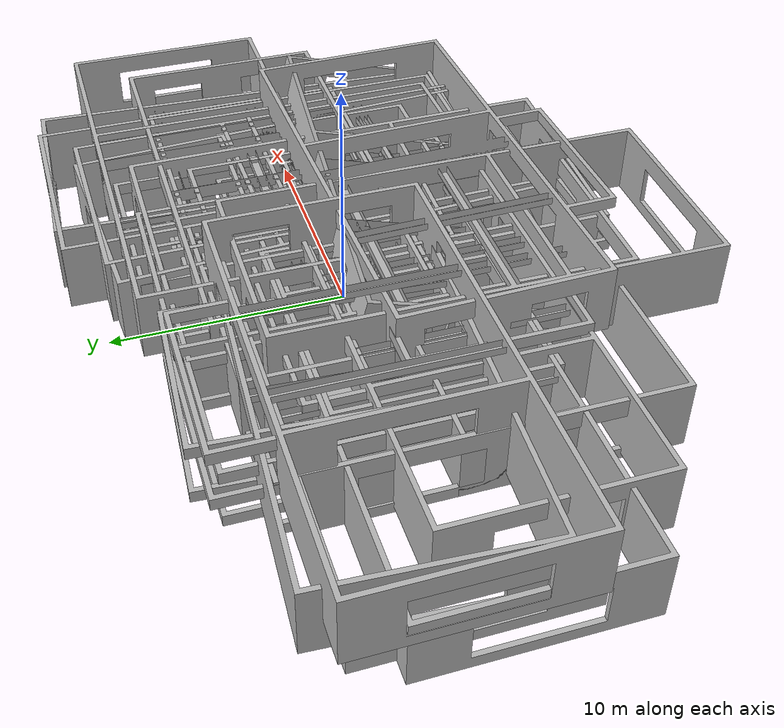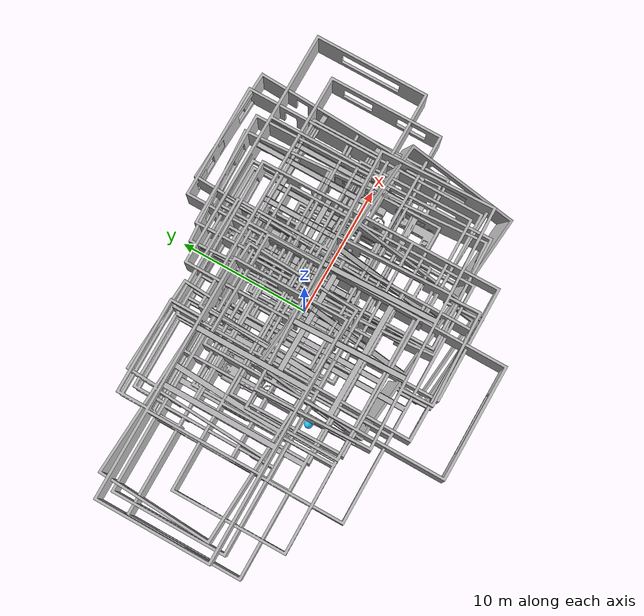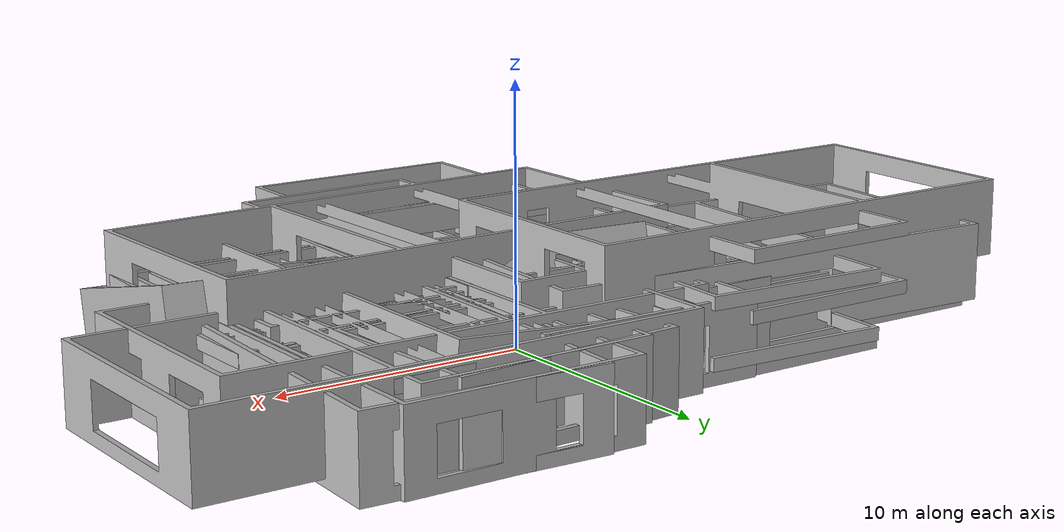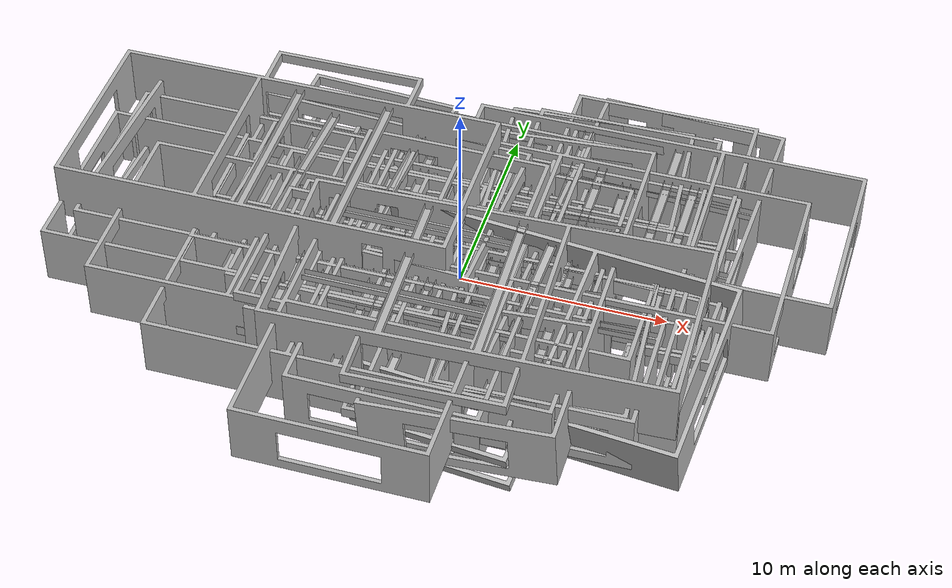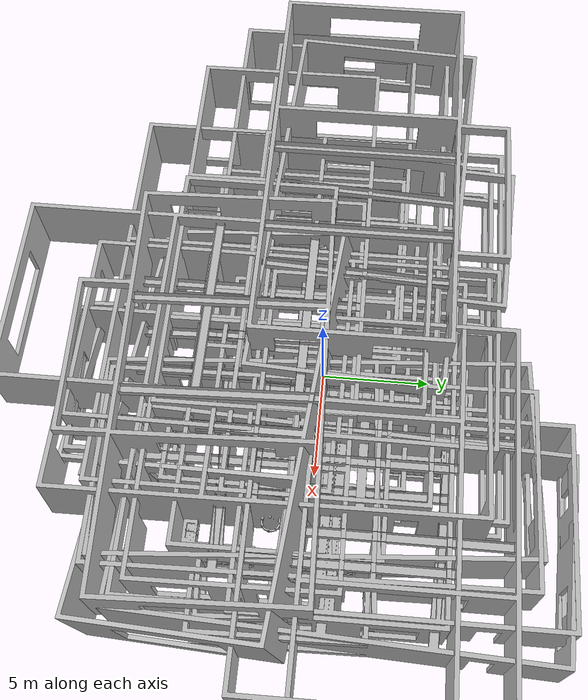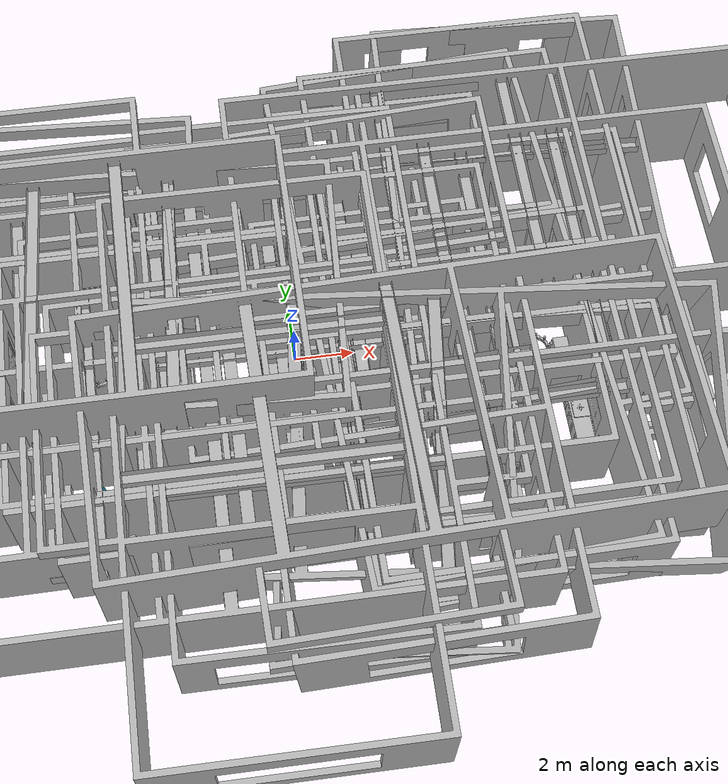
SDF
<sdf version="1.6">
 <world name="default">
  <gravity>0 0 -9.8</gravity>
  <magnetic_field>6e-06 2.3e-05 -4.2e-05</magnetic_field>
  <atmosphere type="adiabatic"/>
  <physics name="default_physics" default="0" type="ode">
   <max_step_size>0.001</max_step_size>
   <real_time_factor>1</real_time_factor>
   <real_time_update_rate>1000</real_time_update_rate>
  </physics>
  <scene>
   <ambient>0.4 0.4 0.4 1</ambient>
   <background>0.7 0.7 0.7 1</background>
   <shadows>false</shadows>
   <grid>false</grid>
   <origin_visual>false</origin_visual>
  </scene>
  <spherical_coordinates>
   <surface_model>EARTH_WGS84</surface_model>
   <latitude_deg>0</latitude_deg>
   <longitude_deg>0</longitude_deg>
   <elevation>0</elevation>
   <heading_deg>0</heading_deg>
  </spherical_coordinates>
  <model name="AirconditionerA_01_001">
   <static>true</static>
   <include><uri>model://aws_robomaker_residential_AirconditionerA_01</uri></include>
   <pose>-9.199410 2.411230 2.084544 1.5707 -0 0</pose>
  </model>
  <model name="AirconditionerB_01_001">
   <static>true</static>
   <include><uri>model://aws_robomaker_residential_AirconditionerB_01</uri></include>
   <pose>-2.004656 -5.226610 0.003485 1.5707 -0 0</pose>
  </model>
  <model name="Ball_01_001">
   <static>true</static>
   <include><uri>model://aws_robomaker_residential_Ball_01</uri></include>
   <pose>3.295503 4.225674 0.318684 1.5707 -0 0</pose>
  </model>
  <model name="Ball_01_003">
   <static>true</static>
   <include><uri>model://aws_robomaker_residential_Ball_01</uri></include>
   <pose>-6.945503 -4.22174 0.318684 1.5707 -0 0</pose>
  </model>
  <model name="Bed_01_001">
   <static>true</static>
   <include><uri>model://aws_robomaker_residential_Bed_01</uri></include>
   <pose>-6.165067 2.030560 -0.000010 1.57 -0 0</pose>
  </model>
  <model name="Board_01_001">
   <static>true</static>
   <include><uri>model://aws_robomaker_residential_Board_01</uri></include>
   <pose>2.779073 -5.392703 1.538173 1.5707 -0 0</pose>
  </model>
  <model name="ChairA_01_001">
   <static>true</static>
   <include><uri>model://aws_robomaker_residential_ChairA_01</uri></include>
   <pose>7.11516 0.209028 0.024685 1.5707 -0 -1.55607</pose>
  </model>
  <model name="ChairA_01_002">
   <static>true</static>
   <include><uri>model://aws_robomaker_residential_ChairA_01</uri></include>
   <pose>6.25506 0.219468 0.011308 1.5707 0 -1.50414</pose>
  </model>
  <model name="ChairA_01_003">
   <static>true</static>
   <include><uri>model://aws_robomaker_residential_ChairA_01</uri></include>
   <pose>6.06678 1.68075 0.01 1.5707 -0 1.56986</pose>
  </model>
  <model name="ChairA_01_004">
   <static>true</static>
   <include><uri>model://aws_robomaker_residential_ChairA_01</uri></include>
   <pose>7.00277 1.67074 0 1.5707 -0 1.52363</pose>
  </model>
  <model name="ChairA_01_005">
   <static>true</static>
   <include><uri>model://aws_robomaker_residential_ChairA_01</uri></include>
   <pose>-8.270940 1.916650 0.036650 1.5707 -0 0</pose>
  </model>
  <model name="Chandelier_01_001">
   <static>true</static>
   <include><uri>model://aws_robomaker_residential_Chandelier_01</uri></include>
   <pose>1.221061 4.155740 1.295000 1.5707 -0 0</pose>
  </model>
  <model name="Chandelier_01_002">
   <static>true</static>
   <include><uri>model://aws_robomaker_residential_Chandelier_01</uri></include>
   <pose>-6.451061 -0.692040 1.810000 1.5707 -0 0</pose>
  </model>
  <model name="Chandelier_01_003">
   <static>true</static>
   <include><uri>model://aws_robomaker_residential_Chandelier_01</uri></include>
   <pose>7.824061 -1.59 1.7510000 1.5707 -0 0</pose>
  </model>
  <model name="Chandelier_01_004">
   <static>true</static>
   <include><uri>model://aws_robomaker_residential_Chandelier_01</uri></include>
   <pose>1.221061 -1.592040 1.7873000 1.5707 -0 0</pose>
  </model>
  <model name="Carpet_01_001">
   <static>true</static>
   <include><uri>model://aws_robomaker_residential_Carpet_01</uri></include>
   <pose>0.785050 -1.106647 0.001106 1.5707 -0 0</pose>
  </model>
  <model name="Carpet_01_002">
   <static>true</static>
   <include><uri>model://aws_robomaker_residential_Carpet_01</uri></include>
   <pose>2.854050 3.45 0.000585 1.5707 -0 0</pose>
  </model>
  <model name="SecurityCamera_01_001">
   <static>true</static>
   <include><uri>model://aws_robomaker_residential_SecurityCamera_01</uri></include>
   <pose>0.842134 -4.996294 0.495067 1.5707 -0 -2.841039</pose>
  </model>
  <model name="CoffeeTable_01_001">
   <static>true</static>
   <include><uri>model://aws_robomaker_residential_CoffeeTable_01</uri></include>
   <pose>1.512301 -1.733438 0.041983 1.5707 0.000000 0.01000</pose>
  </model>
  <model name="CookingBench_01_001">
   <include><uri>model://aws_robomaker_residential_CookingBench_01</uri></include>
   <pose>9.038383 -3.351140 0.903610 1.5707 -0 3.137133</pose>
   <static>true</static>
  </model>
  <model name="Curtain_01_001">
   <static>true</static>
   <include><uri>model://aws_robomaker_residential_Curtain_01</uri></include>
   <pose>-9.172642 0.203760 0 1.5707 -0 0</pose>
  </model>
  <model name="BalconyTable_01_001">
   <static>true</static>
   <include><uri>model://aws_robomaker_residential_BalconyTable_01</uri></include>
   <pose>-0.556240 4.111241 0 1.5707 -0 0</pose>
  </model>
  <model name="Door_01_001">
   <static>true</static>
   <include><uri>model://aws_robomaker_residential_Door_01</uri></include>
   <pose>6.001449 -5.549002 0 1.5707 -0 0</pose>
  </model>
  <model name="Dumbbell_01_001">
   <static>true</static>
   <include><uri>model://aws_robomaker_residential_Dumbbell_01</uri></include>
   <pose>2.512849 2.717787 0.002183 1.5707 -0 0</pose>
  </model>
  <model name="FitnessEquipment_01_001">
   <static>true</static>
   <include><uri>model://aws_robomaker_residential_FitnessEquipment_01</uri></include>
   <pose>3.484720 3.169104 0.003168 1.5707 -0 0</pose>
  </model>
  <model name="FoldingDoor_01_001">
   <static>true</static>
   <include><uri>model://aws_robomaker_residential_FoldingDoor_01</uri></include>
   <pose>-2.461096 1.844219 0.041881 1.5707 -0 0</pose>
  </model>
  <model name="FoldingDoor_01_002">
   <static>true</static>
   <include><uri>model://aws_robomaker_residential_FoldingDoor_01</uri></include>
   <pose>-2.461096 -4.053320 0.041881 1.5707 -0 0</pose>
  </model>
  <model name="HouseWallB_01_001">
   <static>true</static>
   <include><uri>model://aws_robomaker_residential_HouseWallB_01</uri></include>
   <pose>0 0 0 1.5707 -0 0</pose>
  </model>
  <model name="FloorB_01_001">
   <static>true</static>
   <include><uri>model://aws_robomaker_residential_FloorB_01</uri></include>
   <pose>0 0 0 1.5707 -0 0</pose>
  </model>
  <model name="KitchenCabinet_01_001">
   <static>true</static>
   <include><uri>model://aws_robomaker_residential_KitchenCabinet_01</uri></include>
   <pose>8.002009 -3.836509 0.012068 1.57 0 -3.140001</pose>
  </model>
  <model name="KitchenUtensils_01_001">
   <static>true</static>
   <include><uri>model://aws_robomaker_residential_KitchenUtensils_01</uri></include>
   <pose>9.285478 -5.021261 1.141805 1.5707 -0 0</pose>
  </model>
  <model name="LightC_01_001">
   <static>true</static>
   <include><uri>model://aws_robomaker_residential_LightC_01</uri></include>
   <pose>1.769567 -5.4443710 2.000000 1.5707 -0 0</pose>
  </model>
  <model name="LightC_01_002">
   <static>true</static>
   <include><uri>model://aws_robomaker_residential_LightC_01</uri></include>
   <pose>-0.138245 -5.4443710 2.000000 1.5707 -0 0</pose>
  </model>
  <model name="PortraitA_01">
   <static>true</static>
   <include><uri>model://aws_robomaker_residential_PortraitA_01</uri></include>
   <pose>-2.712360 -4.817539 1.00000 1.5707 -0 1.566796</pose>
  </model>
  <model name="PortraitB_02">
   <static>true</static>
   <include><uri>model://aws_robomaker_residential_PortraitB_02</uri></include>
   <pose>5.737017 3.080310 0.300000 1.5707 -0 0</pose>
  </model>
  <model name="PortraitB_03">
   <static>true</static>
   <include><uri>model://aws_robomaker_residential_PortraitB_03</uri></include>
   <pose>3.071380 -5.349366 0.005494 -0.168428 0.0 3.104232</pose>
  </model>
  <model name="PortraitA_02">
   <static>true</static>
   <include><uri>model://aws_robomaker_residential_PortraitA_02</uri></include>
   <pose>7.937017 3.080310 0.300000 1.5707 -0 3.14</pose>
  </model>
  <model name="PortraitE_01">
   <static>true</static>
   <include><uri>model://aws_robomaker_residential_PortraitE_01</uri></include>
   <pose>-5.773094 -5.492466 1.000000 1.5707 -0 3.132627</pose>
  </model>
  <model name="PortraitE_02">
   <static>true</static>
   <include><uri>model://aws_robomaker_residential_PortraitE_02</uri></include>
   <pose>-6.193025 -1.590208 0.3 1.5707 -0 0.004290</pose>
  </model>
  <model name="DeskPortraitA_01">
   <static>true</static>
   <include><uri>model://aws_robomaker_residential_DeskPortraitA_01</uri></include>
   <pose>-0.036864 -5.110156 0.498660 1.5707 -0 2.927784</pose>
  </model>
  <model name="DeskPortraitA_02">
   <static>true</static>
   <include><uri>model://aws_robomaker_residential_DeskPortraitA_02</uri></include>
   <pose>2.046082 -1.892926 0.0703880 1.507 -0.000441 1.576216</pose>
  </model>
  <model name="DeskPortraitC_01">
   <static>true</static>
   <include><uri>model://aws_robomaker_residential_DeskPortraitC_01</uri></include>
   <pose>-7.746377 2.731075 0.694620 1.5707 -0.000359 -0.055499</pose>
  </model>
  <model name="DeskPortraitC_02">
   <static>true</static>
   <include><uri>model://aws_robomaker_residential_DeskPortraitC_02</uri></include>
   <pose>0.964613 -1.586951 0.127676 1.5707 -0.000545 -1.578699</pose>
  </model>
  <model name="DeskPortraitD_01">
   <static>true</static>
   <include><uri>model://aws_robomaker_residential_DeskPortraitD_01</uri></include>
   <pose>2.645560 -5.376225 1.573738 1.5707 -0 -3.112826</pose>
  </model>
  <model name="DeskPortraitB_01">
   <static>true</static>
   <include><uri>model://aws_robomaker_residential_DeskPortraitB_01</uri></include>
   <pose>3.547376 -5.083898 -0.012660 1.336622 -0.000001 3.046741</pose>
  </model>
  <model name="Refrigerator_01_001">
   <static>true</static>
   <include><uri>model://aws_robomaker_residential_Refrigerator_01</uri></include>
   <pose>8.702731 -1.032031 0 0 -0 -1.563499</pose>
  </model>
  <model name="RoomWindow_01_001">
   <static>true</static>
   <include><uri>model://aws_robomaker_residential_RoomWindow_01</uri></include>
   <pose>-9.418600 -0.026285 0.502739 1.5707 -0 0</pose>
  </model>
  <model name="RoomWindow_01_002">
   <static>true</static>
   <include><uri>model://aws_robomaker_residential_RoomWindow_01</uri></include>
   <pose>-9.418600 -2.374090 0.502739 1.5707 -0 0</pose>
  </model>
  <model name="RoomWindow_01_003">
   <static>true</static>
   <include><uri>model://aws_robomaker_residential_RoomWindow_01</uri></include>
   <pose>9.422616 -3.373981 0.502739 1.5707 -0 -3.136099</pose>
  </model>
  <model name="RoomWindow_01_004">
   <static>true</static>
   <include><uri>model://aws_robomaker_residential_RoomWindow_01</uri></include>
   <pose>9.422558 0.968520 0.496581 1.5707 -0 -3.136099</pose>
  </model>
  <model name="RoomWindow_01_005">
   <static>true</static>
   <include><uri>model://aws_robomaker_residential_RoomWindow_01</uri></include>
   <pose>4.722317 4.470281 0.502739 1.5707 -0 -3.136099</pose>
  </model>
  <model name="RoomWindow_01_006">
   <static>true</static>
   <include><uri>model://aws_robomaker_residential_RoomWindow_01</uri></include>
   <pose>3.488520 5.600688 0.502739 1.5707 -0 -1.566274</pose>
  </model>
  <model name="RoomWindow_01_007">
   <static>true</static>
   <include><uri>model://aws_robomaker_residential_RoomWindow_01</uri></include>
   <pose>1.140949 5.600688 0.502739 1.5707 -0 -1.566274</pose>
  </model>
  <model name="RoomWindow_01_008">
   <static>true</static>
   <include><uri>model://aws_robomaker_residential_RoomWindow_01</uri></include>
   <pose>-1.199340 5.600688 0.502739 1.5707 -0 -1.566274</pose>
  </model>
  <model name="RoomWindow_01_009">
   <static>true</static>
   <include><uri>model://aws_robomaker_residential_RoomWindow_01</uri></include>
   <pose>-2.396624 4.387607 0.502739 1.5707 -0 0</pose>
  </model>
  <light name="LivingRoom_CeilingLight_0" type="point">
   <pose>1.194296 4.155759 2.2 0 -0 0</pose>
   <diffuse>0.5 0.5 0.5 1</diffuse>
   <specular>0.1 0.1 0.1 1</specular>
   <attenuation>
    <range>20</range>
    <constant>0.32</constant>
    <linear>0.01</linear>
    <quadratic>0.03</quadratic>
   </attenuation>
   <cast_shadows>0</cast_shadows>
   <direction>0 0 -1</direction>
  </light>
  <light name="LivingRoom_CeilingLight_1" type="point">
   <pose>1.194296 -1.589959 2.2 0 -0 0</pose>
   <diffuse>0.5 0.5 0.5 1</diffuse>
   <specular>0.1 0.1 0.1 1</specular>
   <attenuation>
    <range>20</range>
    <constant>0.05</constant>
    <linear>0.01</linear>
    <quadratic>0.09</quadratic>
   </attenuation>
   <cast_shadows>0</cast_shadows>
   <direction>0 0 -1</direction>
  </light>
  <light name="LivingRoom_WallLight_0" type="point">
   <pose>1.76956 -5.444370 2.2 0 -0 0</pose>
   <diffuse>0.24 0.24 0.24 1</diffuse>
   <specular>0.1 0.1 0.1 1</specular>
   <attenuation>
    <range>20</range>
    <constant>0.12</constant>
    <linear>0.00</linear>
    <quadratic>0.03</quadratic>
   </attenuation>
   <direction>0 0 -1</direction>
  </light>
  <light name="LivingRoom_WallLight_1" type="point">
   <pose>-0.13826 -5.444370 2.2 0 -0 0</pose>
   <diffuse>0.24 0.24 0.24 1</diffuse>
   <specular>0.1 0.1 0.1 1</specular>
   <attenuation>
    <range>20</range>
    <constant>0.12</constant>
    <linear>0.00</linear>
    <quadratic>0.03</quadratic>
   </attenuation>
   <direction>0 0 -1</direction>
  </light>
  <light name="TV_Light_0" type="point">
   <pose>0.8269 -4.939577 1.1 0 -0 0</pose>
   <diffuse>0.31372 0.31372 0.34901 1</diffuse>
   <specular>0.1 0.1 0.1 1</specular>
   <attenuation>
    <range>3</range>
    <constant>0.10</constant>
    <linear>0.04</linear>
    <quadratic>0.50</quadratic>
   </attenuation>
   <direction>0 0 -1</direction>
  </light>
  <light name="BedRoom_Portrait_Light_0" type="spot">
   <pose>-6.190379 -1.829697 1.5587 0.3 -0 0.0</pose>
   <diffuse>0.5 0.5 0.5 1</diffuse>
   <specular>0.1 0.1 0.1 1</specular>
   <attenuation>
    <range>20</range>
    <constant>0.50</constant>
    <linear>0.01</linear>
    <quadratic>0.00</quadratic>
   </attenuation>
   <spot><inner_angle>0.6</inner_angle><outer_angle>1.0</outer_angle><falloff>1.0</falloff></spot>
   <direction>0 0 -1</direction>
  </light>
  <light name="BedRoom_CeilingLight_0" type="point">
   <pose>-6.451061 -0.692040 2.000000 0 -0 0</pose>
   <diffuse>0.5 0.5 0.5 1</diffuse>
   <specular>0.1 0.1 0.1 1</specular>
   <attenuation>
    <range>20</range>
    <constant>0.32</constant>
    <linear>0.01</linear>
    <quadratic>0.03</quadratic>
   </attenuation>
   <cast_shadows>0</cast_shadows>
   <direction>0 0 -1</direction>
  </light>
  <light name="Kitchen_CeilingLight_0" type="point">
   <pose>7.8582 -1.5905 2.280000 0 -0 0</pose>
   <diffuse>0.5 0.5 0.5 1</diffuse>
   <specular>0.1 0.1 0.1 1</specular>
   <attenuation>
    <range>20</range>
    <constant>0.3</constant>
    <linear>0.01</linear>
    <quadratic>0.01</quadratic>
   </attenuation>
   <cast_shadows>0</cast_shadows>
   <direction>0 0 -1</direction>
  </light>
 </world>
</sdf>

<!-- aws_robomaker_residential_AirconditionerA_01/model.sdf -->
<sdf version="1.6">
  <model name="aws_robomaker_residential_AirconditionerA_01">
    <link name="link">
      <inertial>
        <mass>1</mass>
	<inertia>
          <ixx>1</ixx>
          <ixy>0</ixy>
          <ixz>0</ixz>
          <iyy>1</iyy>
          <iyz>0</iyz>
          <izz>1</izz>
        </inertia>
      </inertial>
      <collision name="collision">
        <geometry>
          <mesh>
            <uri>meshes/object.obj</uri>
            <scale>1 1 1</scale>
          </mesh>
        </geometry>
      </collision>
      <visual name="visual">
	    <geometry>
          <mesh>
            <uri>meshes/object.obj</uri>
          </mesh>
        </geometry>
      <meta> <layer> 1 </layer></meta>
</visual>
    </link>
	<static>1</static>
  </model>
</sdf>

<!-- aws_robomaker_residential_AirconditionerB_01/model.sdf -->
<sdf version="1.6">
  <model name="aws_robomaker_residential_AirconditionerB_01">
    <link name="link">
      <inertial>
	<inertia>
          <ixx>1</ixx>
          <ixy>0</ixy>
          <ixz>0</ixz>
          <iyy>1</iyy>
          <iyz>0</iyz>
          <izz>1</izz>
        </inertia>
        <mass>1</mass>
      </inertial>
      <collision name="collision">
        <geometry>
          <mesh>
<uri>model://aws_robomaker_residential_AirconditionerB_01/meshes/object.obj</uri>
            <scale>1 1 1</scale>
          </mesh>
        </geometry>
      </collision>
      <visual name="visual">
	    <geometry>
          <mesh>
<uri>model://aws_robomaker_residential_AirconditionerB_01/meshes/object.obj</uri>
          </mesh>
        </geometry>
      <meta> <layer> 1 </layer></meta>
</visual>
    </link>
  </model>
</sdf>

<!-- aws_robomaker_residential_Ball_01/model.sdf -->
<sdf version="1.6">
  <model name="aws_robomaker_residential_Ball_01">
    <link name="link">
      <inertial>
        <mass>0.12</mass>
        <!-- 2r = 62cm -->
          <inertia>
            <ixx>0.030752</ixx>
            <ixy>0</ixy>
            <ixz>0</ixz>
            <iyy>0.030752</iyy>
            <iyz>0</iyz>
            <izz>0.030752</izz>
          </inertia>
      </inertial>
      <collision name="collision">

        <geometry>
          <sphere>
            <radius>0.31 </radius>
          </sphere>

        </geometry>

        <surface>
          <friction>
            <ode>
              <mu>0.85</mu>
              <mu2>0.85</mu2>
            </ode>
          </friction>

        <!-- Add some bounciness to the ball -->
          <contact>
            <ode>
              <kd>8500</kd>
              <max_vel>5.1</max_vel>
            </ode>
          </contact>
        </surface>

      </collision>
      <visual name="visual">
	    <geometry>
          <sphere>
            <radius>0.31 </radius>
          </sphere>
      </geometry>
          <material>
            <diffuse>0.12 0.76 0.97 1</diffuse>
            <ambient>0.03 0.21 0.27 1</ambient>
          </material>
      <meta> <layer> 1 </layer></meta>
</visual>
    </link>
  </model>
</sdf>

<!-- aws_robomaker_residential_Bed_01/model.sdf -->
<sdf version="1.6">
  <model name="aws_robomaker_residential_Bed_01">
    <link name="link">
      <inertial>
	<inertia>
          <ixx>1</ixx>
          <ixy>0</ixy>
          <ixz>0</ixz>
          <iyy>1</iyy>
          <iyz>0</iyz>
          <izz>1</izz>
        </inertia>
        <mass>22.6</mass>
      </inertial>
      <collision name="collision">
        <geometry>
          <mesh>
<uri>model://aws_robomaker_residential_Bed_01/meshes/object.obj</uri>
            <scale>1 1 1</scale>
          </mesh>
        </geometry>
      </collision>
      <visual name="visual">
	    <geometry>
          <mesh>
<uri>model://aws_robomaker_residential_Bed_01/meshes/object.obj</uri>
          </mesh>
        </geometry>
      <meta> <layer> 1 </layer></meta>
</visual>
    </link>
  <static>1</static>
  </model>
</sdf>

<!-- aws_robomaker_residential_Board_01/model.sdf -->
<sdf version="1.6">
  <model name="aws_robomaker_residential_Board_01">
    <link name="link">
      <inertial>
	<inertia>
          <ixx>1</ixx>
          <ixy>0</ixy>
          <ixz>0</ixz>
          <iyy>1</iyy>
          <iyz>0</iyz>
          <izz>1</izz>
        </inertia>
        <mass>1</mass>
      </inertial>
      <collision name="collision">
        <geometry>
          <mesh>
<uri>model://aws_robomaker_residential_Board_01/meshes/object.obj</uri>
            <scale>1 1 1</scale>
          </mesh>
        </geometry>
      </collision>
      <visual name="visual">
	    <geometry>
          <mesh>
<uri>model://aws_robomaker_residential_Board_01/meshes/object.obj</uri>
          </mesh>
        </geometry>
      <meta> <layer> 2 </layer></meta>
</visual>
    </link>

    <static>1</static>
  </model>
</sdf>

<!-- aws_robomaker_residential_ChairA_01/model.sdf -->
<sdf version="1.6">
  <model name="aws_robomaker_residential_ChairA_01">
    <link name="link">
      <inertial>
          <mass>7.5</mass>
          <inertia>
            <ixy>0</ixy>
            <ixz>0</ixz>
            <iyz>0</iyz>
            <ixx>0.217</ixx>
            <iyy>0.217</iyy>
            <izz>0.067</izz>
          </inertia>
      </inertial>

      <collision name="collision">
        <geometry>
          <mesh>
<uri>model://aws_robomaker_residential_ChairA_01/meshes/object.obj</uri>
            <scale>1 1 1</scale>
          </mesh>
        </geometry>
      </collision>
      <visual name="visual">
	    <geometry>
          <mesh>
<uri>model://aws_robomaker_residential_ChairA_01/meshes/object.obj</uri>
          </mesh>
        </geometry>
      <meta> <layer> 1 </layer></meta>
</visual>
    </link>
  </model>
</sdf>

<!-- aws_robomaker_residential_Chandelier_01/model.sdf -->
<sdf version="1.6">
  <model name="aws_robomaker_residential_Chandelier_01">
    <link name="link">
      <inertial>
	<inertia>
          <ixx>1</ixx>
          <ixy>0</ixy>
          <ixz>0</ixz>
          <iyy>1</iyy>
          <iyz>0</iyz>
          <izz>1</izz>
        </inertia>
        <mass>1</mass>
      </inertial>
      <collision name="collision">
        <geometry>
          <mesh>
<uri>model://aws_robomaker_residential_Chandelier_01/meshes/object.obj</uri>
            <scale>1 1 1</scale>
          </mesh>
        </geometry>
      </collision>
      <visual name="visual">
	    <geometry>
          <mesh>
<uri>model://aws_robomaker_residential_Chandelier_01/meshes/object.obj</uri>
          </mesh>
        </geometry>
      <meta> <layer> 2 </layer></meta>
</visual>
    </link>
	<static>1</static>
  </model>
</sdf>

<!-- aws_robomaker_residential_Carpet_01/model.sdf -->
<sdf version="1.6">
  <model name="aws_robomaker_residential_Carpet_01">
    <link name="link">
      <inertial>
	<inertia>
          <ixx>1</ixx>
          <ixy>0</ixy>
          <ixz>0</ixz>
          <iyy>1</iyy>
          <iyz>0</iyz>
          <izz>1</izz>
        </inertia>
        <mass>8.1</mass>
      </inertial>

      <collision name="collision">

        <geometry>
          <mesh>
<uri>model://aws_robomaker_residential_Carpet_01/meshes/object.obj</uri>
            <scale>1 1 0.95</scale>
          </mesh>
        </geometry>

        <surface>
          <contact>
            <ode>
            </ode>
          </contact>
        </surface>

        <pose>0 0 -0.01 0 0 0 </pose>
      </collision>

      <visual name="visual">
	    <geometry>
          <mesh>
<uri>model://aws_robomaker_residential_Carpet_01/meshes/object.obj</uri>
          </mesh>
        </geometry>
      <meta> <layer> 1 </layer></meta>
</visual>
    </link>

    <static>1</static>

  </model>
</sdf>

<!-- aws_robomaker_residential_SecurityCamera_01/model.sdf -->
<sdf version="1.6">
  <model name="aws_robomaker_residential_SecurityCamera_01">
    <link name="link">
      <inertial>
        <mass>1</mass>
        <inertia>
          <ixx>18.2222</ixx>
          <ixy>0</ixy>
          <ixz>0</ixz>
          <iyy>18.2222</iyy>
          <iyz>0</iyz>
          <izz>0.0018767</izz>
        </inertia>
      </inertial>
      <collision name="collision">
        <geometry>
          <mesh>
<uri>model://aws_robomaker_residential_SecurityCamera_01/meshes/object.obj</uri>
            <scale>1 1 1</scale>
          </mesh>
        </geometry>
      </collision>
      <visual name="visual">
	    <geometry>
          <mesh>
<uri>model://aws_robomaker_residential_SecurityCamera_01/meshes/object.obj</uri>
          </mesh>
        </geometry>
        <meta>
          <layer>2</layer>
        </meta>
      </visual>
    </link>
  </model>
</sdf>

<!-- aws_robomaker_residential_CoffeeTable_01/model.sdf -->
<sdf version="1.6">
  <model name="aws_robomaker_residential_CoffeeTable_01">
    <link name="link">
      <inertial>
        <mass>21.7</mass>

        <inertia>
          <ixx>0.8137499999999998</ixx>
          <ixy>0</ixy>
          <ixz>0</ixz>
          <iyy>2.76675</iyy>
          <iyz>0</iyz>
          <izz>3.254</izz>
        </inertia>

      </inertial>

      <collision name="collision">
        <geometry>
          <mesh>
<uri>model://aws_robomaker_residential_CoffeeTable_01/meshes/object.obj</uri>
            <scale>1 1 1</scale>
          </mesh>
        </geometry>

        <surface>
          <contact>
            <ode>
              <max_vel>0.01</max_vel>
            </ode>
          </contact>
         </surface>
      </collision>

      <visual name="visual">
	    <geometry>
          <mesh>
<uri>model://aws_robomaker_residential_CoffeeTable_01/meshes/object.obj</uri>
          </mesh>
        </geometry>
      <meta> <layer> 1 </layer></meta>
</visual>
    </link>
    <static>1</static>
  </model>
</sdf>

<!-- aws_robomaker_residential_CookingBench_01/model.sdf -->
<sdf version="1.6">
  <model name="aws_robomaker_residential_CookingBench_01">
    <link name="link">
      <inertial>
	<inertia>
          <ixx>1</ixx>
          <ixy>0</ixy>
          <ixz>0</ixz>
          <iyy>1</iyy>
          <iyz>0</iyz>
          <izz>1</izz>
        </inertia>
        <mass>1</mass>
      </inertial>
      <collision name="collision">
        <geometry>
          <mesh>
<uri>model://aws_robomaker_residential_CookingBench_01/meshes/object.obj</uri>
            <scale>1 1 1</scale>
          </mesh>
        </geometry>
      </collision>
      <visual name="visual">
	    <geometry>
          <mesh>
<uri>model://aws_robomaker_residential_CookingBench_01/meshes/object.obj</uri>
          </mesh>
        </geometry>
      <meta> <layer> 1 </layer></meta>
</visual>
    </link>
  </model>
</sdf>

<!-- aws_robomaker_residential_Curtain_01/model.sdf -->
<sdf version="1.6">
  <model name="aws_robomaker_residential_Curtain_01">
    <link name="link">
      <inertial>
	<inertia>
          <ixx>1</ixx>
          <ixy>0</ixy>
          <ixz>0</ixz>
          <iyy>1</iyy>
          <iyz>0</iyz>
          <izz>1</izz>
        </inertia>
        <mass>1</mass>
      </inertial>
      <collision name="collision">
        <geometry>
          <mesh>
<uri>model://aws_robomaker_residential_Curtain_01/meshes/object.obj</uri>
            <scale>1 1 1</scale>
          </mesh>
        </geometry>
      </collision>
      <visual name="visual">
	    <geometry>
          <mesh>
<uri>model://aws_robomaker_residential_Curtain_01/meshes/object.obj</uri>
          </mesh>
        </geometry>
      <meta> <layer> 2 </layer></meta>
</visual>
    </link>
	<static>1</static>
  </model>
</sdf>

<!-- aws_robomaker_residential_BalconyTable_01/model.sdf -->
<sdf version="1.6">
  <model name="aws_robomaker_residential_BalconyTable_01">
    <link name="link">
      <inertial>
	<inertia>
          <ixx>1</ixx>
          <ixy>0</ixy>
          <ixz>0</ixz>
          <iyy>1</iyy>
          <iyz>0</iyz>
          <izz>1</izz>
        </inertia>
        <mass>15</mass>
      </inertial>
      <collision name="collision">
        <geometry>
          <mesh>
<uri>model://aws_robomaker_residential_BalconyTable_01/meshes/object.obj</uri>
            <scale>1 1 1</scale>
          </mesh>
        </geometry>
      </collision>
      <visual name="visual">
	    <geometry>
          <mesh>
<uri>model://aws_robomaker_residential_BalconyTable_01/meshes/object.obj</uri>
          </mesh>
        </geometry>
      <meta> <layer> 1 </layer></meta>
</visual>
    </link>
  </model>
</sdf>

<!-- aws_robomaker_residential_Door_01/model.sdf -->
<sdf version="1.6">
  <model name="aws_robomaker_residential_Door_01">
    <link name="link">
      <inertial>
	<inertia>
          <ixx>1</ixx>
          <ixy>0</ixy>
          <ixz>0</ixz>
          <iyy>1</iyy>
          <iyz>0</iyz>
          <izz>1</izz>
        </inertia>
        <mass>1</mass>
      </inertial>
      <collision name="collision">
        <geometry>
          <mesh>
<uri>model://aws_robomaker_residential_Door_01/meshes/object.obj</uri>
            <scale>1 1 1</scale>
          </mesh>
        </geometry>
      </collision>
      <visual name="visual">
	    <geometry>
          <mesh>
<uri>model://aws_robomaker_residential_Door_01/meshes/object.obj</uri>
          </mesh>
        </geometry>
      <meta> <layer> 2 </layer></meta>
</visual>
    </link>
	<static>1</static>
  </model>
</sdf>

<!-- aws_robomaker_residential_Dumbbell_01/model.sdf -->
<sdf version="1.6">
  <model name="aws_robomaker_residential_Dumbbell_01">
    <link name="link">
      <inertial>
        <mass>80</mass>

        <!-- slender rod -->
        <inertia>
          <ixx>14.601</ixx>
          <ixy>0</ixy>
          <ixz>0</ixz>
          <iyy>0</iyy>
          <iyz>0</iyz>
          <izz>14.601</izz>
        </inertia>
      </inertial>
      <collision name="collision">
        <geometry>
          <mesh>
<uri>model://aws_robomaker_residential_Dumbbell_01/meshes/object.obj</uri>
            <scale>1 1 1</scale>
          </mesh>
        </geometry>
        <max_contacts>10</max_contacts>
          <surface>
            <contact>
              <ode/>
            </contact>
            <bounce/>
            <friction>
              <torsional>
                <ode/>
              </torsional>
              <ode/>
            </friction>
          </surface>
      </collision>
      <visual name="visual">
	    <geometry>
          <mesh>
<uri>model://aws_robomaker_residential_Dumbbell_01/meshes/object.obj</uri>
          </mesh>
        </geometry>
      <meta> <layer> 1 </layer></meta>
</visual>
    </link>
    <static>1</static>
  </model>
</sdf>

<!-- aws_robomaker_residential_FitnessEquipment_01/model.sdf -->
<sdf version="1.6">
  <model name="aws_robomaker_residential_FitnessEquipment_01">
    <link name="link">
      <inertial>
	<inertia>
          <ixx>1</ixx>
          <ixy>0</ixy>
          <ixz>0</ixz>
          <iyy>1</iyy>
          <iyz>0</iyz>
          <izz>1</izz>
        </inertia>
        <mass>80</mass>
      </inertial>
      <collision name="collision">
        <geometry>
          <mesh>
<uri>model://aws_robomaker_residential_FitnessEquipment_01/meshes/object.obj</uri>
            <scale>1 1 1</scale>
          </mesh>
        </geometry>
      </collision>
      <visual name="visual">
	    <geometry>
          <mesh>
<uri>model://aws_robomaker_residential_FitnessEquipment_01/meshes/object.obj</uri>
          </mesh>
        </geometry>
      <meta> <layer> 1 </layer></meta>
</visual>
    </link>
  <static>1</static>
  </model>
</sdf>

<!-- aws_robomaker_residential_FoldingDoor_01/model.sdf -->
<sdf version="1.6">
  <model name="aws_robomaker_residential_FoldingDoor_01">
    <link name="link">
      <inertial>
	<inertia>
          <ixx>1</ixx>
          <ixy>0</ixy>
          <ixz>0</ixz>
          <iyy>1</iyy>
          <iyz>0</iyz>
          <izz>1</izz>
        </inertia>
        <mass>1</mass>
      </inertial>
      <collision name="collision">
        <geometry>
          <mesh>
<uri>model://aws_robomaker_residential_FoldingDoor_01/meshes/object.obj</uri>
            <scale>1 1 1</scale>
          </mesh>
        </geometry>
      </collision>
      <visual name="visual">
	    <geometry>
          <mesh>
<uri>model://aws_robomaker_residential_FoldingDoor_01/meshes/object.obj</uri>
          </mesh>
        </geometry>
      <meta> <layer> 2 </layer></meta>
</visual>
    </link>
	<static>1</static>
  </model>
</sdf>

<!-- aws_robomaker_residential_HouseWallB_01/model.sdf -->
<sdf version="1.6">
  <model name="aws_robomaker_residential_HouseWallB_01">
    <link name="link">
      <inertial>
	<inertia>
          <ixx>1</ixx>
          <ixy>0</ixy>
          <ixz>0</ixz>
          <iyy>1</iyy>
          <iyz>0</iyz>
          <izz>1</izz>
        </inertia>
        <mass>1</mass>
      </inertial>
      <collision name="collision">
        <geometry>
          <mesh>
<uri>model://aws_robomaker_residential_HouseWallB_01/meshes/object.obj</uri>
            <scale>1 1 1</scale>
          </mesh>
        </geometry>
      </collision>
      <visual name="visual">
	    <geometry>
          <mesh>
<uri>model://aws_robomaker_residential_HouseWallB_01/meshes/object.obj</uri>
          </mesh>
        </geometry>
      <meta> <layer> 2 </layer></meta>
</visual>
    </link>
	<static>1</static>
  </model>
</sdf>

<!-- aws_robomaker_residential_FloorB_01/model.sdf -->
<sdf version="1.6">
  <model name="aws_robomaker_residential_FloorB_01">
    <link name="link">
      <inertial>
	<inertia>
          <ixx>1</ixx>
          <ixy>0</ixy>
          <ixz>0</ixz>
          <iyy>1</iyy>
          <iyz>0</iyz>
          <izz>1</izz>
        </inertia>
        <mass>100</mass>
      </inertial>

      <collision name="collision">
        <geometry>
          <mesh>
<uri>model://aws_robomaker_residential_FloorB_01/meshes/object.obj</uri>
            <scale>1 1 0.9</scale>
          </mesh>
        </geometry>

        <surface>

        <!--
        src: https://www.engineeringtoolbox.com/friction-coefficients-d_778.html
        Wood (Clean & Dry Surfaces): 0.6
        -->
          <friction>
            <ode>
              <mu>0.6</mu>
              <mu2>0.6</mu2>
            </ode>
          </friction>

        </surface>

      </collision>

      <visual name="visual">
	    <geometry>
          <mesh>
<uri>model://aws_robomaker_residential_FloorB_01/meshes/object.obj</uri>
          </mesh>
        </geometry>
      <meta> <layer> 1 </layer></meta>
</visual>
    </link>

	<static>1</static>
  </model>
</sdf>

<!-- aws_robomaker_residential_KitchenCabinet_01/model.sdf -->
<sdf version="1.6">
  <model name="aws_robomaker_residential_KitchenCabinet_01">
    <link name="link">
      <inertial>
	<inertia>
          <ixx>1</ixx>
          <ixy>0</ixy>
          <ixz>0</ixz>
          <iyy>1</iyy>
          <iyz>0</iyz>
          <izz>1</izz>
        </inertia>
        <mass>1</mass>
      </inertial>
      <collision name="collision">
        <laser_retro>0</laser_retro>
        <max_contacts>10</max_contacts>
        <geometry>
          <mesh>
<uri>model://aws_robomaker_residential_KitchenCabinet_01/meshes/object.obj</uri>
            <scale>1 1 1</scale>
          </mesh>
        </geometry>
      </collision>
      <visual name="visual">
	    <geometry>
          <mesh>
<uri>model://aws_robomaker_residential_KitchenCabinet_01/meshes/object.obj</uri>
          </mesh>
        </geometry>
      <meta> <layer> 1 </layer></meta>
</visual>
    </link>

    <static>1</static>
  </model>
</sdf>

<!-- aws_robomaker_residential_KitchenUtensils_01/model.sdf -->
<sdf version="1.6">
  <model name="aws_robomaker_residential_KitchenUtensils_01">
    <link name="link">
      <inertial>
	<inertia>
          <ixx>1</ixx>
          <ixy>0</ixy>
          <ixz>0</ixz>
          <iyy>1</iyy>
          <iyz>0</iyz>
          <izz>1</izz>
        </inertia>
        <mass>1</mass>
      </inertial>
      <collision name="collision">
        <geometry>
          <mesh>
<uri>model://aws_robomaker_residential_KitchenUtensils_01/meshes/object.obj</uri>
            <scale>1 1 1</scale>
          </mesh>
        </geometry>
      </collision>
      <visual name="visual">
	    <geometry>
          <mesh>
<uri>model://aws_robomaker_residential_KitchenUtensils_01/meshes/object.obj</uri>
          </mesh>
        </geometry>
      <meta> <layer> 1 </layer></meta>
</visual>
    </link>
	<static>1</static>
  </model>
</sdf>

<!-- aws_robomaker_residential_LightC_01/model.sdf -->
<sdf version="1.6">
  <model name="aws_robomaker_residential_LightC_01">
    <link name="link">
      <inertial>
	<inertia>
          <ixx>1</ixx>
          <ixy>0</ixy>
          <ixz>0</ixz>
          <iyy>1</iyy>
          <iyz>0</iyz>
          <izz>1</izz>
        </inertia>
        <mass>1</mass>
      </inertial>
      <collision name="collision">
        <geometry>
          <mesh>
<uri>model://aws_robomaker_residential_LightC_01/meshes/object.obj</uri>
            <scale>1 1 1</scale>
          </mesh>
        </geometry>
      </collision>
      <visual name="visual">
	    <geometry>
          <mesh>
<uri>model://aws_robomaker_residential_LightC_01/meshes/object.obj</uri>
          </mesh>
        </geometry>
      <meta> <layer> 2 </layer></meta>
</visual>
    </link>
	<static>1</static>
  </model>
</sdf>

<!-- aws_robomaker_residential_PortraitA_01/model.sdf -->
<sdf version="1.6">
  <model name="aws_robomaker_residential_PortraitA_01">
    <link name="link">
      <inertial>
	<inertia>
          <ixx>1</ixx>
          <ixy>0</ixy>
          <ixz>0</ixz>
          <iyy>1</iyy>
          <iyz>0</iyz>
          <izz>1</izz>
        </inertia>
        <mass>1</mass>
      </inertial>
      <collision name="collision">
        <geometry>
          <mesh>
<uri>model://aws_robomaker_residential_PortraitA_01/meshes/object.obj</uri>
            <scale>1 1 1</scale>
          </mesh>
        </geometry>
      </collision>
      <visual name="visual">
	    <geometry>
          <mesh>
<uri>model://aws_robomaker_residential_PortraitA_01/meshes/object.obj</uri>
          </mesh>
        </geometry>
      <meta> <layer> 2 </layer></meta>
</visual>
    </link>
	<static>1</static>
  </model>
</sdf>

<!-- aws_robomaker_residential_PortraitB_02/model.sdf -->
<sdf version="1.6">
  <model name="aws_robomaker_residential_PortraitB_02">
    <link name="link">
      <inertial>
	<inertia>
          <ixx>1</ixx>
          <ixy>0</ixy>
          <ixz>0</ixz>
          <iyy>1</iyy>
          <iyz>0</iyz>
          <izz>1</izz>
        </inertia>
        <mass>1</mass>
      </inertial>
      <collision name="collision">
        <geometry>
          <mesh>
<uri>model://aws_robomaker_residential_PortraitB_02/meshes/object.obj</uri>
            <scale>1 1 1</scale>
          </mesh>
        </geometry>
      </collision>
      <visual name="visual">
	    <geometry>
          <mesh>
<uri>model://aws_robomaker_residential_PortraitB_02/meshes/object.obj</uri>
          </mesh>
        </geometry>
      <meta> <layer> 2 </layer></meta>
</visual>
    </link>
	<static>1</static>
  </model>
</sdf>

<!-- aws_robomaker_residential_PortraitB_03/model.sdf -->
<sdf version="1.6">
  <model name="aws_robomaker_residential_PortraitB_03">
    <link name="link">
      <inertial>
	<inertia>
          <ixx>1</ixx>
          <ixy>0</ixy>
          <ixz>0</ixz>
          <iyy>1</iyy>
          <iyz>0</iyz>
          <izz>1</izz>
        </inertia>
        <mass>1</mass>
      </inertial>
      <collision name="collision">
        <geometry>
          <mesh>
<uri>model://aws_robomaker_residential_PortraitB_03/meshes/object.obj</uri>
            <scale>1 1 1</scale>
          </mesh>
        </geometry>
      </collision>
      <visual name="visual">
	    <geometry>
          <mesh>
<uri>model://aws_robomaker_residential_PortraitB_03/meshes/object.obj</uri>
          </mesh>
        </geometry>
      <meta> <layer> 2 </layer></meta>
</visual>
    </link>
	<static>1</static>
  </model>
</sdf>

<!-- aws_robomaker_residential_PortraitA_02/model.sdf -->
<sdf version="1.6">
  <model name="aws_robomaker_residential_PortraitA_02">
    <link name="link">
      <inertial>
	<inertia>
          <ixx>1</ixx>
          <ixy>0</ixy>
          <ixz>0</ixz>
          <iyy>1</iyy>
          <iyz>0</iyz>
          <izz>1</izz>
        </inertia>
        <mass>1</mass>
      </inertial>
      <collision name="collision">
        <geometry>
          <mesh>
<uri>model://aws_robomaker_residential_PortraitA_02/meshes/object.obj</uri>
            <scale>1 1 1</scale>
          </mesh>
        </geometry>
      </collision>
      <visual name="visual">
	    <geometry>
          <mesh>
<uri>model://aws_robomaker_residential_PortraitA_02/meshes/object.obj</uri>
          </mesh>
        </geometry>
      <meta> <layer> 2 </layer></meta>
</visual>
    </link>
	<static>1</static>
  </model>
</sdf>

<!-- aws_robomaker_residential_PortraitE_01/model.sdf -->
<sdf version="1.6">
  <model name="aws_robomaker_residential_PortraitE_01">
    <link name="link">
      <inertial>
	<inertia>
          <ixx>1</ixx>
          <ixy>0</ixy>
          <ixz>0</ixz>
          <iyy>1</iyy>
          <iyz>0</iyz>
          <izz>1</izz>
        </inertia>
        <mass>1</mass>
      </inertial>
      <collision name="collision">
        <geometry>
          <mesh>
<uri>model://aws_robomaker_residential_PortraitE_01/meshes/object.obj</uri>
            <scale>1 1 1</scale>
          </mesh>
        </geometry>
      </collision>
      <visual name="visual">
	    <geometry>
          <mesh>
<uri>model://aws_robomaker_residential_PortraitE_01/meshes/object.obj</uri>
          </mesh>
        </geometry>
      <meta> <layer> 2 </layer></meta>
</visual>
    </link>
	<static>1</static>
  </model>
</sdf>

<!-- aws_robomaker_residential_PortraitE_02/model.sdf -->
<sdf version="1.6">
  <model name="aws_robomaker_residential_PortraitE_02">
    <link name="link">
      <inertial>
	<inertia>
          <ixx>1</ixx>
          <ixy>0</ixy>
          <ixz>0</ixz>
          <iyy>1</iyy>
          <iyz>0</iyz>
          <izz>1</izz>
        </inertia>
        <mass>1</mass>
      </inertial>
      <collision name="collision">
        <geometry>
          <mesh>
<uri>model://aws_robomaker_residential_PortraitE_02/meshes/object.obj</uri>
            <scale>1 1 1</scale>
          </mesh>
        </geometry>
      </collision>
      <visual name="visual">
	    <geometry>
          <mesh>
<uri>model://aws_robomaker_residential_PortraitE_02/meshes/object.obj</uri>
          </mesh>
        </geometry>
      <meta> <layer> 2 </layer></meta>
</visual>
    </link>
	<static>1</static>
  </model>
</sdf>

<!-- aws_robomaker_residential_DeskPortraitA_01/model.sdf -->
<sdf version="1.6">
  <model name="aws_robomaker_residential_DeskPortraitA_01">
    <link name="link">

      <inertial>
        <mass>1</mass>
        <inertia>
            <ixx>0.0835</ixx>
            <ixy>0</ixy>
            <ixz>0</ixz>
            <iyy>0.16</iyy>
            <iyz>0</iyz>
            <izz>0.08347</izz>
        </inertia>
      </inertial>

      <collision name="collision">
        <geometry>
          <mesh>
<uri>model://aws_robomaker_residential_DeskPortraitA_01/meshes/object.obj</uri>
            <scale>1 1 1</scale>
          </mesh>
        </geometry>
      </collision>

      <visual name="visual">
	    <geometry>
          <mesh>
<uri>model://aws_robomaker_residential_DeskPortraitA_01/meshes/object.obj</uri>
          </mesh>
        </geometry>
      <meta> <layer> 1 </layer></meta>
</visual>
    </link>
  </model>
</sdf>

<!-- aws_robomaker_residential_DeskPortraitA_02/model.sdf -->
<sdf version="1.6">
  <model name="aws_robomaker_residential_DeskPortraitA_02">
    <link name="link">

      <inertial>
        <mass>1</mass>
        <inertia>
            <ixx>0.0835</ixx>
            <ixy>0</ixy>
            <ixz>0</ixz>
            <iyy>0.16</iyy>
            <iyz>0</iyz>
            <izz>0.08347</izz>
        </inertia>
      </inertial>

      <collision name="collision">
        <geometry>
          <mesh>
<uri>model://aws_robomaker_residential_DeskPortraitA_02/meshes/object.obj</uri>
            <scale>1 1 1</scale>
          </mesh>
        </geometry>
      </collision>

      <visual name="visual">
	    <geometry>
          <mesh>
<uri>model://aws_robomaker_residential_DeskPortraitA_02/meshes/object.obj</uri>
          </mesh>
        </geometry>
      <meta> <layer> 1 </layer></meta>
</visual>
    </link>
  </model>
</sdf>

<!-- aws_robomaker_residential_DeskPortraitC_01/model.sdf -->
<sdf version="1.6">
  <model name="aws_robomaker_residential_DeskPortraitC_01">
    <link name="link">
      <inertial>
        <mass>1</mass>
        <inertia>
            <ixx>0.0835</ixx>
            <ixy>0</ixy>
            <ixz>0</ixz>
            <iyy>0.16</iyy>
            <iyz>0</iyz>
            <izz>0.08347</izz>
        </inertia>
      </inertial>
      <collision name="collision">
        <geometry>
          <mesh>
<uri>model://aws_robomaker_residential_DeskPortraitC_01/meshes/object.obj</uri>
            <scale>1 1 1</scale>
          </mesh>
        </geometry>
      </collision>
      <visual name="visual">
	    <geometry>
          <mesh>
<uri>model://aws_robomaker_residential_DeskPortraitC_01/meshes/object.obj</uri>
          </mesh>
        </geometry>
      <meta> <layer> 1 </layer></meta>
</visual>
    </link>
  </model>
</sdf>

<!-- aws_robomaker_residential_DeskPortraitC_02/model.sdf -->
<sdf version="1.6">
  <model name="aws_robomaker_residential_DeskPortraitC_02">
    <link name="link">
      <inertial>
        <mass>1</mass>
        <inertia>
            <ixx>0.0835</ixx>
            <ixy>0</ixy>
            <ixz>0</ixz>
            <iyy>0.16</iyy>
            <iyz>0</iyz>
            <izz>0.08347</izz>
        </inertia>
      </inertial>
      <collision name="collision">
        <geometry>
          <mesh>
<uri>model://aws_robomaker_residential_DeskPortraitC_02/meshes/object.obj</uri>
            <scale>1 1 1</scale>
          </mesh>
        </geometry>
      </collision>
      <visual name="visual">
	    <geometry>
          <mesh>
<uri>model://aws_robomaker_residential_DeskPortraitC_02/meshes/object.obj</uri>
          </mesh>
        </geometry>
      <meta> <layer> 1 </layer></meta>
</visual>
    </link>
  </model>
</sdf>

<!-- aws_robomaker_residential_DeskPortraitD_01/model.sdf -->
<sdf version="1.6">
  <model name="aws_robomaker_residential_DeskPortraitD_01">
    <link name="link">
      <inertial>
        <mass>0.4</mass>
          <inertia>
            <ixx>0.0616</ixx>
            <ixy>0</ixy>
            <ixz>0</ixz>
            <iyy>0.1313</iyy>
            <iyz>0</iyz>
            <izz>0.0803</izz>
          </inertia>
      </inertial>

      <collision name="collision">
        <geometry>
          <mesh>
<uri>model://aws_robomaker_residential_DeskPortraitD_01/meshes/object.obj</uri>
            <scale>1 1 1</scale>
          </mesh>
        </geometry>

        <surface>
          <friction>
            <ode>
              <mu>0.7</mu>
              <mu2>0.7</mu2>
            </ode>
          </friction>

          <contact>
            <ode>
              <kd>28500</kd>
            </ode>
          </contact>

        </surface>

      </collision>

      <visual name="visual">
	    <geometry>
          <mesh>
<uri>model://aws_robomaker_residential_DeskPortraitD_01/meshes/object.obj</uri>
          </mesh>
        </geometry>
      <meta> <layer> 1 </layer></meta>
</visual>
    </link>
  </model>
</sdf>

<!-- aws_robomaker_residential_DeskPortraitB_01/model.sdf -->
<sdf version="1.6">
  <model name="aws_robomaker_residential_DeskPortraitB_01">
    <link name="link">

      <inertial>
        <mass>1</mass>
        <inertia>
            <ixx>0.0135</ixx>
            <ixy>0</ixy>
            <ixz>0</ixz>
            <iyy>0.02</iyy>
            <iyz>0</iyz>
            <izz>0.01347</izz>
        </inertia>
      </inertial>

      <collision name="collision">
        <geometry>
          <mesh>
<uri>model://aws_robomaker_residential_DeskPortraitB_01/meshes/object.obj</uri>
            <scale>1 1 1</scale>
          </mesh>
        </geometry>
      </collision>

      <visual name="visual">
	    <geometry>
          <mesh>
<uri>model://aws_robomaker_residential_DeskPortraitB_01/meshes/object.obj</uri>
          </mesh>
        </geometry>
      <meta> <layer> 1 </layer></meta>
</visual>
    </link>
  </model>
</sdf>

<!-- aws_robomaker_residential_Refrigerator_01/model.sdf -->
<sdf version="1.6">
  <model name="aws_robomaker_residential_Refrigerator_01">
    <link name="link">
      <inertial>
	<inertia>
          <ixx>1</ixx>
          <ixy>0</ixy>
          <ixz>0</ixz>
          <iyy>1</iyy>
          <iyz>0</iyz>
          <izz>1</izz>
        </inertia>
        <mass>1</mass>
      </inertial>
      <collision name="collision">
        <geometry>
          <mesh>
<uri>model://aws_robomaker_residential_Refrigerator_01/meshes/object.obj</uri>
            <scale>1 1 1</scale>
          </mesh>
        </geometry>
      </collision>
      <visual name="visual">
	    <geometry>
          <mesh>
<uri>model://aws_robomaker_residential_Refrigerator_01/meshes/object.obj</uri>
          </mesh>
        </geometry>
      <meta> <layer> 1 </layer></meta>
</visual>
    </link>
    <static>1</static>
  </model>
</sdf>

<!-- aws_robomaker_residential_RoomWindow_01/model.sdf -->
<sdf version="1.6">
  <model name="aws_robomaker_residential_RoomWindow_01">
    <link name="link">
      <inertial>
	<inertia>
          <ixx>1</ixx>
          <ixy>0</ixy>
          <ixz>0</ixz>
          <iyy>1</iyy>
          <iyz>0</iyz>
          <izz>1</izz>
        </inertia>
        <mass>1</mass>
      </inertial>
      <collision name="collision">
        <geometry>
          <mesh>
<uri>model://aws_robomaker_residential_RoomWindow_01/meshes/object.obj</uri>
            <scale>1 1 1</scale>
          </mesh>
        </geometry>
      </collision>
      <visual name="visual">
	    <geometry>
          <mesh>
<uri>model://aws_robomaker_residential_RoomWindow_01/meshes/object.obj</uri>
          </mesh>
        </geometry>
      <meta> <layer> 2 </layer></meta>
</visual>
    </link>
	<static>1</static>
  </model>
</sdf>
